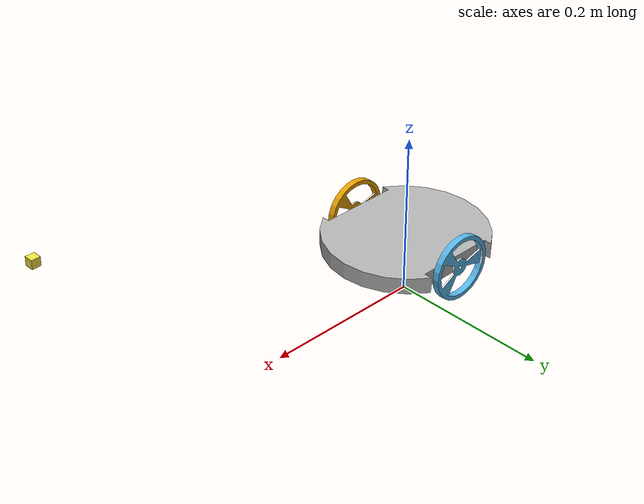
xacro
<?xml version="1.0" ?>
<robot name="three_pi" xmlns:xacro="https://www.ros.org/wiki/xacro">
    <xacro:include filename="$(find three_pi_description)/urdf/wheels_three_pi.xacro" />
    <xacro:include filename="$(find three_pi_description)/urdf/sensors_three_pi.xacro" />
    <xacro:include filename="$(find three_pi_description)/urdf/plugins_three_pi.xacro" />

    <!-- base link -->
    <link name="base_link" />

    <!-- chassis link -->
    <link name="chassis_link">
        <inertial>
            <origin xyz="0.0 0.0 0.01" rpy="0.0 0.0 0.0" />
            <mass value="8.0" />
            <inertia ixx="0.014637420416" ixy="0.0" ixz="0.0" iyy="0.021980346124" iyz="0.0" izz="0.036084431721" />
        </inertial>
        <visual>
            <origin xyz="0.0 0.0 0.04" rpy="0.0 0.0 0.0" />
            <geometry>
                <mesh filename="package://three_pi_description/media/meshes/chassis/model.dae" />
            </geometry>
        </visual>
        <collision>
            <origin xyz="0.0 0.0 0.04" rpy="0.0 0.0 0.0" />
            <geometry>
                <mesh filename="package://three_pi_description/media/meshes/chassis/model.dae" />
            </geometry>
        </collision>

        <!-- caster back -->
        <visual>
            <origin xyz="-0.08 0.0 0.025" rpy="0 0 0" />
            <geometry>
                <sphere radius="0.02" />
            </geometry>
        </visual>
        <collision>
            <origin xyz="-0.08 0.0 0.025" rpy="0 0 0" />
            <geometry>
                <sphere radius="0.02" />
            </geometry>
            <surface>
                <friction>
                    <ode>
                        <mu>0</mu>
                        <mu2>0</mu2>
                        <slip1>1.0</slip1>
                        <slip2>1.0</slip2>
                    </ode>
                </friction>
            </surface>
        </collision>
    </link>

    <joint name="chassis_to_base_joint" type="fixed">
        <parent link="base_link" />
        <child link="chassis_link" />
        <origin xyz="0 0 0.02" rpy="0 0 0" />
    </joint>

    <!-- wheels -->
    <xacro:wheel side="left" reflect="1" />
    <xacro:wheel side="right" reflect="-1" />
</robot>

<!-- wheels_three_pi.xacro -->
<robot name="three_pi_wheel" xmlns:xacro="https://www.ros.org/wiki/xacro">
    <xacro:macro name="wheel" params="side reflect">
        <link name="${side}_wheel_link">
            <inertial>
                <origin xyz="-0.00097124 0.0 -0.0" rpy="0.0 0.0 0.0" />
                <mass value="1.0" />
                <inertia ixx="0.00032551617371" ixy="0.0" ixz="0.0" iyy="0.00076656293161" iyz="0.0" izz="0.00044492054604" />
            </inertial>
            <visual>
                <origin xyz="0.0 0.0 0.0" rpy="0.0 0.0 0.0" />
                <geometry>
                    <mesh filename="package://three_pi_description/media/meshes/wheel/model.dae" />
                </geometry>
            </visual>
            <collision>
                <origin xyz="0.0 0.0 0.0" rpy="0.0 0.0 0.0" />
                <geometry>
                    <mesh filename="package://three_pi_description/media/meshes/wheel/model.dae" />
                </geometry>
            </collision>
        </link>

        <joint name="${side}_wheel_to_chassis_joint" type="continuous">
            <origin xyz="0.0 ${-0.084*reflect} 0.05" rpy="0.0 0.0 0.0" />
            <parent link="chassis_link" />
            <child link="${side}_wheel_link" />
            <axis xyz="0.0 1.0 0.0" />
            <limit effort="10000" velocity="1000" />
            <joint_properties damping="1.0" friction="1.0" />
        </joint>

        <gazebo reference="${side}_wheel_to_chassis_joint">
            <mu1 value="200.0" />
            <mu2 value="100.0" />
            <kp value="10000000.0" />
            <kd value="1.0" />
        </gazebo>
    </xacro:macro>
</robot>

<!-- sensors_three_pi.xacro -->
<robot name="three_pi_sensors" xmlns:xacro="https://www.ros.org/wiki/xacro">

    <!-- camera link 1 (original) -->
    <link name="camera_link">
        <collision>
            <origin xyz="0.0 0.0 0.0" rpy="0.0 0.0 0.0" />
            <geometry>
                <box size="0.01 0.01 0.01" />
            </geometry>
        </collision>
    </link>
    <joint name="camera_joint" type="fixed">
        <origin xyz="0.08 0.0 0.15" rpy="0.0 ${pi/4} 0.0" />
		<parent link="chassis_link" />
        <child link="camera_link" />
    </joint>

	<!-- camera link 2 (left) -->
	<link name="camera_link_2">
	<collision>
		<origin xyz="0.0 0.0 0.0" rpy="0.0 0.0 0.0" />
		<geometry>
			<box size="0.01 0.01 0.01" />
		</geometry>
	</collision>
    </link>
    <joint name="camera_joint_2" type="fixed">
        <origin xyz="0.08 0.1 0.15" rpy="0.0 ${pi/4} 0.0" />
        <parent link="chassis_link" />
        <child link="camera_link_2" />
    </joint>

	<!-- camera link 3 (right) -->
	<link name="camera_link_3">
	<collision>
		<origin xyz="0.0 0.0 0.0" rpy="0.0 0.0 0.0" />
		<geometry>
			<box size="0.01 0.01 0.01" />
		</geometry>
	</collision>
    </link>
    <joint name="camera_joint_3" type="fixed">
        <origin xyz="0.08 -0.1 0.15" rpy="0.0 ${pi/4} 0.0" />
        <parent link="chassis_link" />
        <child link="camera_link_3" />
    </joint>

	<!-- sonar sensor -->
	<joint name="sonar_front_joint" type="fixed">
		<axis xyz="0 1 0" />
		<origin rpy="0 0 0" xyz="0.5 0 0.25" />
		<parent link="chassis_link"/>
		<child link="base_sonar_front"/>
	</joint>
	<link name="base_sonar_front">
		<collision>
		  <origin xyz="0 0 0" rpy="0 0 0"/>
		  <geometry>
			<box size="0.01 0.01 0.01"/>
		  </geometry>
		</collision>
		<visual>
		  <origin xyz="0 0 0" rpy="0 0 0"/>
		  <geometry>
			<box size="0.01 0.01 0.01"/>
		  </geometry>
		</visual>
		<inertial>
		  <mass value="1e-5" />
		  <origin xyz="0 0 0" rpy="0 0 0"/>
		  <inertia ixx="1e-6" ixy="0" ixz="0" iyy="1e-6" iyz="0" izz="1e-6" />
		</inertial>
	</link>

    <!-- lidar link -->
    <link name="lidar_link">
        <collision>
            <origin xyz="0.0 0.0 0.0" rpy="0.0 0.0 0.0" />
            <geometry>
                <box size="0.01 0.01 0.01" />
            </geometry>
        </collision>
    </link>

    <joint name="lidar_joint" type="fixed">
        <origin xyz="0.0 0.0 0.09" rpy="0.0 0.0 0.0" />
        <parent link="chassis_link" />
        <child link="lidar_link" />
    </joint>

    <!-- imu link -->
    <link name="imu_link" />

    <joint name="imu_joint" type="fixed">
        <parent link="chassis_link" />
        <child link="imu_link" />
        <origin xyz="0.0 0 0.05" rpy="0 0 0" />
    </joint>
</robot>
